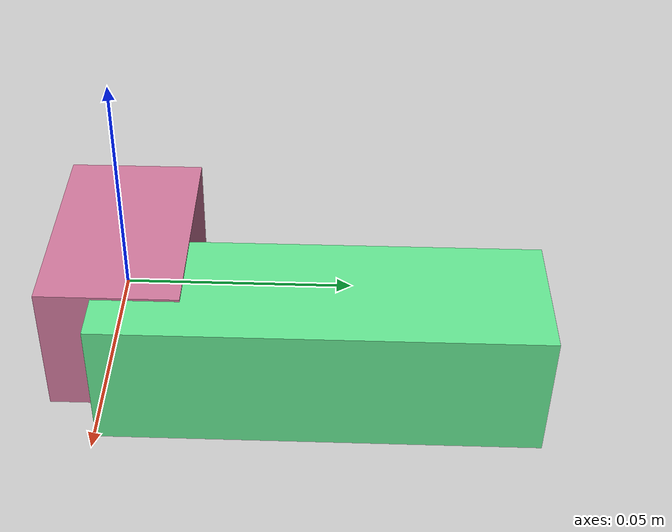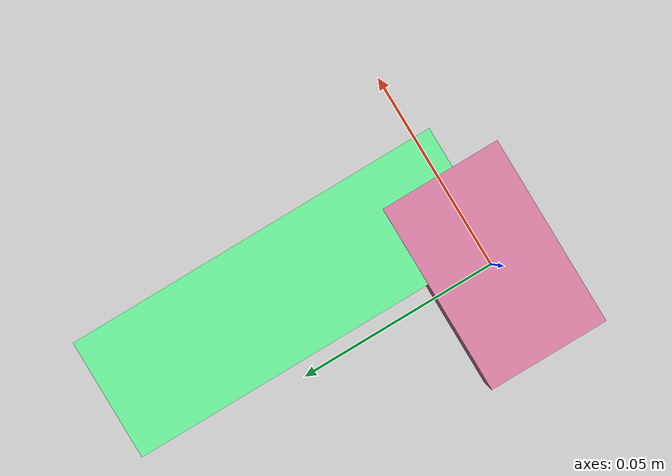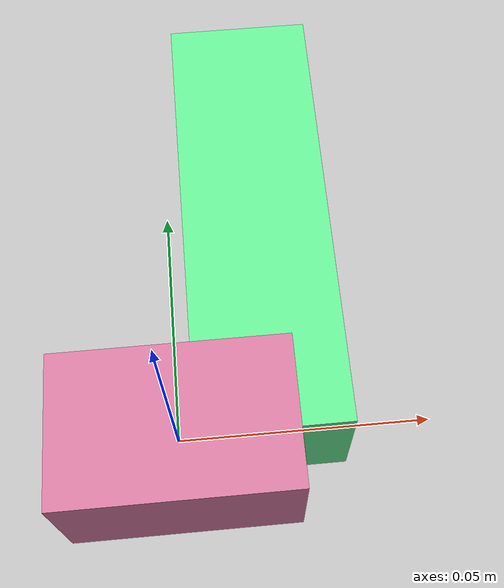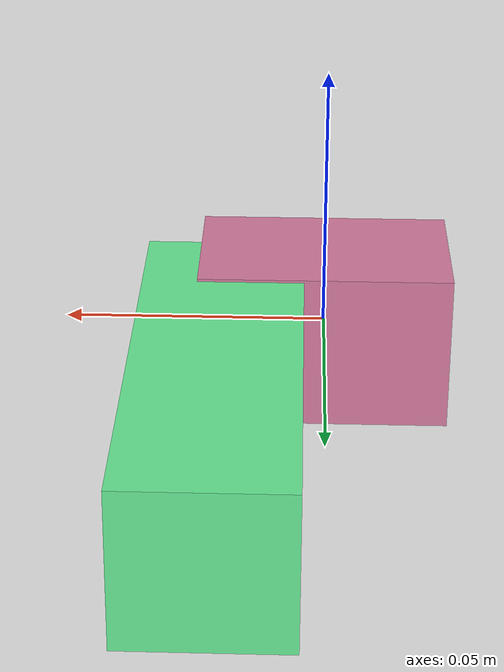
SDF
<sdf version="1.4"><world name="default"><model name="object0"><link name="link1"><pose>0 0 0 0 0 0</pose><inertial><pose>0 0 0 0 0 0</pose><mass>0.02560357206898416</mass><inertia><ixx>3.840535810347623e-06</ixx><ixy>0</ixy><iyy>6.716861398937281e-06</iyy><ixz>0</ixz><iyz>0</iyz><izz>6.716861398937281e-06</izz></inertia></inertial><visual name="link1_visual"><pose>0 0  0 0 0 0</pose><geometry><box><size>0.047414022349970664 0.03 0.03</size></box></geometry><material><diffuse>0.8050710469160283 0.463957109597177 0.6027618468793301 1</diffuse></material></visual><collision><pose>0 0  0 0 0 0</pose><geometry><box><size>0.047414022349970664 0.03 0.03</size></box></geometry></collision></link><link name="link2"><pose>0.018929531628063732 0.043429932443421054 0 0 0 0</pose><inertial><pose>0 0 0 0 0 0</pose><mass>0.05049036317187853</mass><inertia><ixx>4.03223435678439e-05</ixx><ixy>0</ixy><iyy>7.325310190186709e-06</iyy><ixz>0</ixz><iyz>0</iyz><izz>4.057058785343897e-05</izz></inertia></inertial><visual name="link2_visual"><pose>0 0  0 0 0 0</pose><geometry><box><size>0.03 0.0935006725405158 0.028999999999999998</size></box></geometry><material><diffuse>0.38589232908558335 0.8897227579614297 0.5610689094455792 1</diffuse></material></visual><collision><pose>0 0  0 0 0 0</pose><geometry><box><size>0.03 0.0935006725405158 0.028999999999999998</size></box></geometry></collision></link><joint name="link_joint_0" type="fixed"><parent>link1</parent><child>link2</child><pose>0 0 0 0 0 0</pose><axis><xyz>0 0 1</xyz></axis></joint></model></world></sdf>
